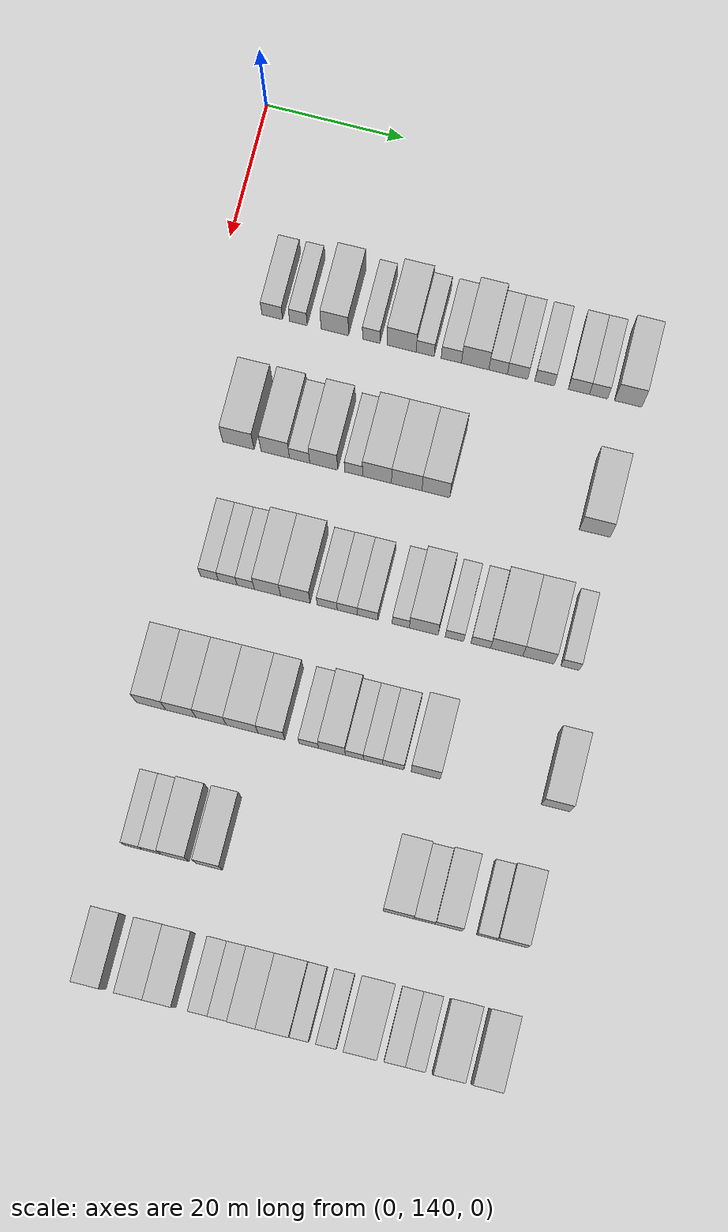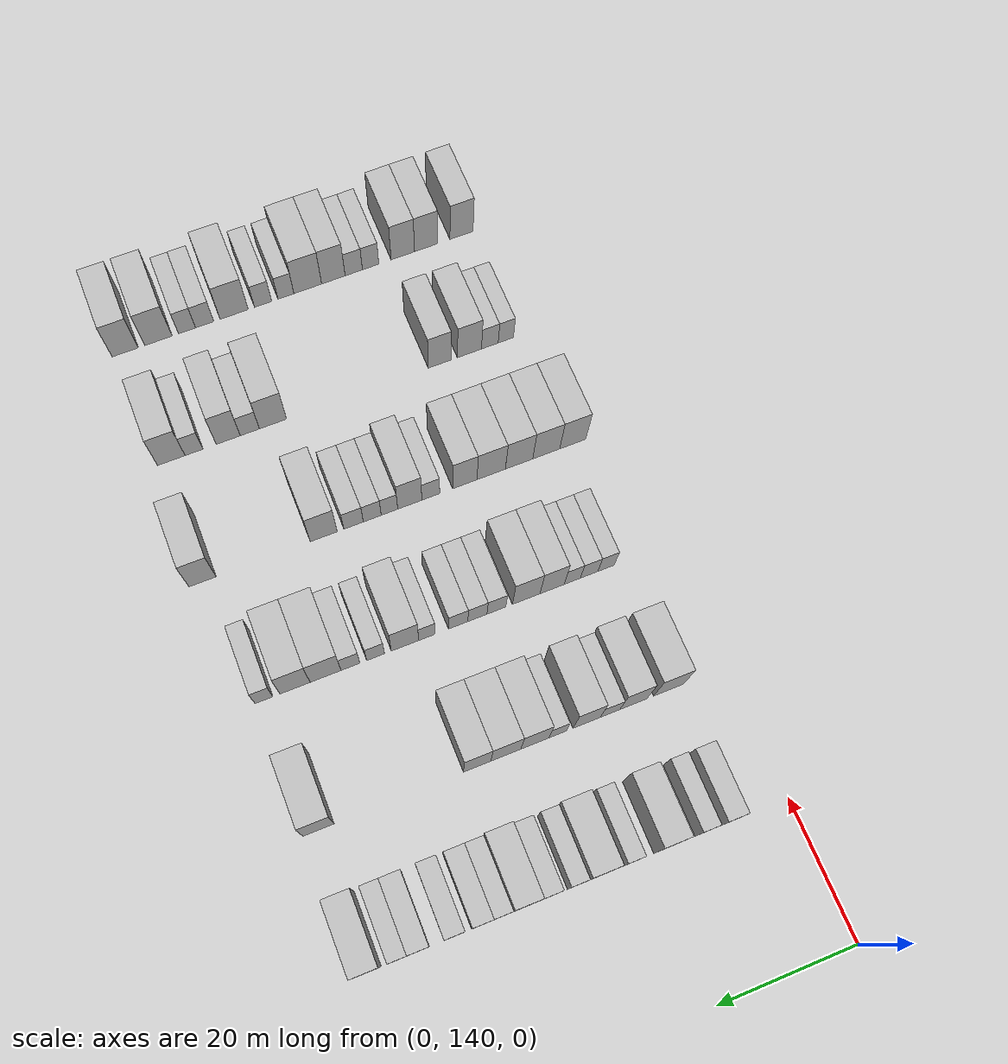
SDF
<sdf version="1.6">
 <world name="default">
  <model name="building_118">
   <static>1</static>
   <pose>25.0000 148.6837 0 0.000000 0.000000 0.000000</pose>
   <link name="link">
    <pose>0 0 3.00 0 0 0</pose>
    <collision name="collision"><geometry><box><size>10.0000 2.9763 6.0000</size></box></geometry></collision>
    <visual name="visual">
     <cast_shadows>0</cast_shadows>
     <geometry><box><size>10.0000 2.9763 6.0000</size></box></geometry>
     <material>
      <script>
       <uri>model://HANNAS_wall/materials/scripts</uri>
       <uri>model://HANNAS_wall/materials/textures</uri>
       <name>vrc/HANNAS_wall</name>
      </script>
     </material>
    </visual>
   </link>
  </model>
  <model name="building_119">
   <static>1</static>
   <pose>25.0000 152.4466 0 0.000000 0.000000 0.000000</pose>
   <link name="link">
    <pose>0 0 3.00 0 0 0</pose>
    <collision name="collision"><geometry><box><size>10.0000 2.5495 6.0000</size></box></geometry></collision>
    <visual name="visual">
     <cast_shadows>0</cast_shadows>
     <geometry><box><size>10.0000 2.5495 6.0000</size></box></geometry>
     <material>
      <script>
       <uri>model://HANNAS_wall/materials/scripts</uri>
       <uri>model://HANNAS_wall/materials/textures</uri>
       <name>vrc/HANNAS_wall</name>
      </script>
     </material>
    </visual>
   </link>
  </model>
  <model name="building_120">
   <static>1</static>
   <pose>25.0000 157.6999 0 0.000000 0.000000 0.000000</pose>
   <link name="link">
    <pose>0 0 4.50 0 0 0</pose>
    <collision name="collision"><geometry><box><size>10.0000 3.9571 9.0000</size></box></geometry></collision>
    <visual name="visual">
     <cast_shadows>0</cast_shadows>
     <geometry><box><size>10.0000 3.9571 9.0000</size></box></geometry>
     <material>
      <script>
       <uri>model://HANNAS_wall/materials/scripts</uri>
       <uri>model://HANNAS_wall/materials/textures</uri>
       <name>vrc/HANNAS_wall</name>
      </script>
     </material>
    </visual>
   </link>
  </model>
  <model name="building_121">
   <static>1</static>
   <pose>25.0000 162.9320 0 0.000000 0.000000 0.000000</pose>
   <link name="link">
    <pose>0 0 3.00 0 0 0</pose>
    <collision name="collision"><geometry><box><size>10.0000 2.5071 6.0000</size></box></geometry></collision>
    <visual name="visual">
     <cast_shadows>0</cast_shadows>
     <geometry><box><size>10.0000 2.5071 6.0000</size></box></geometry>
     <material>
      <script>
       <uri>model://HANNAS_wall/materials/scripts</uri>
       <uri>model://HANNAS_wall/materials/textures</uri>
       <name>vrc/HANNAS_wall</name>
      </script>
     </material>
    </visual>
   </link>
  </model>
  <model name="building_122">
   <static>1</static>
   <pose>25.0000 167.2931 0 0.000000 0.000000 0.000000</pose>
   <link name="link">
    <pose>0 0 4.50 0 0 0</pose>
    <collision name="collision"><geometry><box><size>10.0000 4.2152 9.0000</size></box></geometry></collision>
    <visual name="visual">
     <cast_shadows>0</cast_shadows>
     <geometry><box><size>10.0000 4.2152 9.0000</size></box></geometry>
     <material>
      <script>
       <uri>model://HANNAS_wall/materials/scripts</uri>
       <uri>model://HANNAS_wall/materials/textures</uri>
       <name>vrc/HANNAS_wall</name>
      </script>
     </material>
    </visual>
   </link>
  </model>
  <model name="building_123">
   <static>1</static>
   <pose>25.0000 170.6871 0 0.000000 0.000000 0.000000</pose>
   <link name="link">
    <pose>0 0 3.00 0 0 0</pose>
    <collision name="collision"><geometry><box><size>10.0000 2.5729 6.0000</size></box></geometry></collision>
    <visual name="visual">
     <cast_shadows>0</cast_shadows>
     <geometry><box><size>10.0000 2.5729 6.0000</size></box></geometry>
     <material>
      <script>
       <uri>model://HANNAS_wall/materials/scripts</uri>
       <uri>model://HANNAS_wall/materials/textures</uri>
       <name>vrc/HANNAS_wall</name>
      </script>
     </material>
    </visual>
   </link>
  </model>
  <model name="building_124">
   <static>1</static>
   <pose>25.0000 174.4307 0 0.000000 0.000000 0.000000</pose>
   <link name="link">
    <pose>0 0 3.00 0 0 0</pose>
    <collision name="collision"><geometry><box><size>10.0000 2.9143 6.0000</size></box></geometry></collision>
    <visual name="visual">
     <cast_shadows>0</cast_shadows>
     <geometry><box><size>10.0000 2.9143 6.0000</size></box></geometry>
     <material>
      <script>
       <uri>model://HANNAS_wall/materials/scripts</uri>
       <uri>model://HANNAS_wall/materials/textures</uri>
       <name>vrc/HANNAS_wall</name>
      </script>
     </material>
    </visual>
   </link>
  </model>
  <model name="building_125">
   <static>1</static>
   <pose>25.0000 177.8520 0 0.000000 0.000000 0.000000</pose>
   <link name="link">
    <pose>0 0 4.50 0 0 0</pose>
    <collision name="collision"><geometry><box><size>10.0000 3.9283 9.0000</size></box></geometry></collision>
    <visual name="visual">
     <cast_shadows>0</cast_shadows>
     <geometry><box><size>10.0000 3.9283 9.0000</size></box></geometry>
     <material>
      <script>
       <uri>model://HANNAS_wall/materials/scripts</uri>
       <uri>model://HANNAS_wall/materials/textures</uri>
       <name>vrc/HANNAS_wall</name>
      </script>
     </material>
    </visual>
   </link>
  </model>
  <model name="building_126">
   <static>1</static>
   <pose>25.0000 181.1390 0 0.000000 0.000000 0.000000</pose>
   <link name="link">
    <pose>0 0 3.00 0 0 0</pose>
    <collision name="collision"><geometry><box><size>10.0000 2.6457 6.0000</size></box></geometry></collision>
    <visual name="visual">
     <cast_shadows>0</cast_shadows>
     <geometry><box><size>10.0000 2.6457 6.0000</size></box></geometry>
     <material>
      <script>
       <uri>model://HANNAS_wall/materials/scripts</uri>
       <uri>model://HANNAS_wall/materials/textures</uri>
       <name>vrc/HANNAS_wall</name>
      </script>
     </material>
    </visual>
   </link>
  </model>
  <model name="building_127">
   <static>1</static>
   <pose>25.0000 183.9231 0 0.000000 0.000000 0.000000</pose>
   <link name="link">
    <pose>0 0 3.00 0 0 0</pose>
    <collision name="collision"><geometry><box><size>10.0000 2.9226 6.0000</size></box></geometry></collision>
    <visual name="visual">
     <cast_shadows>0</cast_shadows>
     <geometry><box><size>10.0000 2.9226 6.0000</size></box></geometry>
     <material>
      <script>
       <uri>model://HANNAS_wall/materials/scripts</uri>
       <uri>model://HANNAS_wall/materials/textures</uri>
       <name>vrc/HANNAS_wall</name>
      </script>
     </material>
    </visual>
   </link>
  </model>
  <model name="building_128">
   <static>1</static>
   <pose>25.0000 187.7919 0 0.000000 0.000000 0.000000</pose>
   <link name="link">
    <pose>0 0 3.00 0 0 0</pose>
    <collision name="collision"><geometry><box><size>10.0000 2.8150 6.0000</size></box></geometry></collision>
    <visual name="visual">
     <cast_shadows>0</cast_shadows>
     <geometry><box><size>10.0000 2.8150 6.0000</size></box></geometry>
     <material>
      <script>
       <uri>model://HANNAS_wall/materials/scripts</uri>
       <uri>model://HANNAS_wall/materials/textures</uri>
       <name>vrc/HANNAS_wall</name>
      </script>
     </material>
    </visual>
   </link>
  </model>
  <model name="building_129">
   <static>1</static>
   <pose>25.0000 192.6936 0 0.000000 0.000000 0.000000</pose>
   <link name="link">
    <pose>0 0 3.00 0 0 0</pose>
    <collision name="collision"><geometry><box><size>10.0000 2.9883 6.0000</size></box></geometry></collision>
    <visual name="visual">
     <cast_shadows>0</cast_shadows>
     <geometry><box><size>10.0000 2.9883 6.0000</size></box></geometry>
     <material>
      <script>
       <uri>model://HANNAS_wall/materials/scripts</uri>
       <uri>model://HANNAS_wall/materials/textures</uri>
       <name>vrc/HANNAS_wall</name>
      </script>
     </material>
    </visual>
   </link>
  </model>
  <model name="building_130">
   <static>1</static>
   <pose>25.0000 195.4893 0 0.000000 0.000000 0.000000</pose>
   <link name="link">
    <pose>0 0 3.00 0 0 0</pose>
    <collision name="collision"><geometry><box><size>10.0000 2.6030 6.0000</size></box></geometry></collision>
    <visual name="visual">
     <cast_shadows>0</cast_shadows>
     <geometry><box><size>10.0000 2.6030 6.0000</size></box></geometry>
     <material>
      <script>
       <uri>model://HANNAS_wall/materials/scripts</uri>
       <uri>model://HANNAS_wall/materials/textures</uri>
       <name>vrc/HANNAS_wall</name>
      </script>
     </material>
    </visual>
   </link>
  </model>
  <model name="building_131">
   <static>1</static>
   <pose>25.0000 199.7324 0 0.000000 0.000000 0.000000</pose>
   <link name="link">
    <pose>0 0 4.50 0 0 0</pose>
    <collision name="collision"><geometry><box><size>10.0000 3.8834 9.0000</size></box></geometry></collision>
    <visual name="visual">
     <cast_shadows>0</cast_shadows>
     <geometry><box><size>10.0000 3.8834 9.0000</size></box></geometry>
     <material>
      <script>
       <uri>model://HANNAS_wall/materials/scripts</uri>
       <uri>model://HANNAS_wall/materials/textures</uri>
       <name>vrc/HANNAS_wall</name>
      </script>
     </material>
    </visual>
   </link>
  </model>
  <model name="building_285">
   <static>1</static>
   <pose>44.0000 148.7897 0 0.000000 0.000000 0.000000</pose>
   <link name="link">
    <pose>0 0 4.50 0 0 0</pose>
    <collision name="collision"><geometry><box><size>10.0000 4.4940 9.0000</size></box></geometry></collision>
    <visual name="visual">
     <cast_shadows>0</cast_shadows>
     <geometry><box><size>10.0000 4.4940 9.0000</size></box></geometry>
     <material>
      <script>
       <uri>model://HANNAS_wall/materials/scripts</uri>
       <uri>model://HANNAS_wall/materials/textures</uri>
       <name>vrc/HANNAS_wall</name>
      </script>
     </material>
    </visual>
   </link>
  </model>
  <model name="building_286">
   <static>1</static>
   <pose>44.0000 154.0646 0 0.000000 0.000000 0.000000</pose>
   <link name="link">
    <pose>0 0 4.50 0 0 0</pose>
    <collision name="collision"><geometry><box><size>10.0000 4.0558 9.0000</size></box></geometry></collision>
    <visual name="visual">
     <cast_shadows>0</cast_shadows>
     <geometry><box><size>10.0000 4.0558 9.0000</size></box></geometry>
     <material>
      <script>
       <uri>model://HANNAS_wall/materials/scripts</uri>
       <uri>model://HANNAS_wall/materials/textures</uri>
       <name>vrc/HANNAS_wall</name>
      </script>
     </material>
    </visual>
   </link>
  </model>
  <model name="building_287">
   <static>1</static>
   <pose>44.0000 157.5310 0 0.000000 0.000000 0.000000</pose>
   <link name="link">
    <pose>0 0 3.00 0 0 0</pose>
    <collision name="collision"><geometry><box><size>10.0000 2.8770 6.0000</size></box></geometry></collision>
    <visual name="visual">
     <cast_shadows>0</cast_shadows>
     <geometry><box><size>10.0000 2.8770 6.0000</size></box></geometry>
     <material>
      <script>
       <uri>model://HANNAS_wall/materials/scripts</uri>
       <uri>model://HANNAS_wall/materials/textures</uri>
       <name>vrc/HANNAS_wall</name>
      </script>
     </material>
    </visual>
   </link>
  </model>
  <model name="building_288">
   <static>1</static>
   <pose>44.0000 160.9638 0 0.000000 0.000000 0.000000</pose>
   <link name="link">
    <pose>0 0 4.50 0 0 0</pose>
    <collision name="collision"><geometry><box><size>10.0000 3.9887 9.0000</size></box></geometry></collision>
    <visual name="visual">
     <cast_shadows>0</cast_shadows>
     <geometry><box><size>10.0000 3.9887 9.0000</size></box></geometry>
     <material>
      <script>
       <uri>model://HANNAS_wall/materials/scripts</uri>
       <uri>model://HANNAS_wall/materials/textures</uri>
       <name>vrc/HANNAS_wall</name>
      </script>
     </material>
    </visual>
   </link>
  </model>
  <model name="building_289">
   <static>1</static>
   <pose>44.0000 165.2332 0 0.000000 0.000000 0.000000</pose>
   <link name="link">
    <pose>0 0 3.00 0 0 0</pose>
    <collision name="collision"><geometry><box><size>10.0000 2.5502 6.0000</size></box></geometry></collision>
    <visual name="visual">
     <cast_shadows>0</cast_shadows>
     <geometry><box><size>10.0000 2.5502 6.0000</size></box></geometry>
     <material>
      <script>
       <uri>model://HANNAS_wall/materials/scripts</uri>
       <uri>model://HANNAS_wall/materials/textures</uri>
       <name>vrc/HANNAS_wall</name>
      </script>
     </material>
    </visual>
   </link>
  </model>
  <model name="building_290">
   <static>1</static>
   <pose>44.0000 168.5596 0 0.000000 0.000000 0.000000</pose>
   <link name="link">
    <pose>0 0 4.50 0 0 0</pose>
    <collision name="collision"><geometry><box><size>10.0000 4.1026 9.0000</size></box></geometry></collision>
    <visual name="visual">
     <cast_shadows>0</cast_shadows>
     <geometry><box><size>10.0000 4.1026 9.0000</size></box></geometry>
     <material>
      <script>
       <uri>model://HANNAS_wall/materials/scripts</uri>
       <uri>model://HANNAS_wall/materials/textures</uri>
       <name>vrc/HANNAS_wall</name>
      </script>
     </material>
    </visual>
   </link>
  </model>
  <model name="building_291">
   <static>1</static>
   <pose>44.0000 172.7802 0 0.000000 0.000000 0.000000</pose>
   <link name="link">
    <pose>0 0 4.50 0 0 0</pose>
    <collision name="collision"><geometry><box><size>10.0000 4.3386 9.0000</size></box></geometry></collision>
    <visual name="visual">
     <cast_shadows>0</cast_shadows>
     <geometry><box><size>10.0000 4.3386 9.0000</size></box></geometry>
     <material>
      <script>
       <uri>model://HANNAS_wall/materials/scripts</uri>
       <uri>model://HANNAS_wall/materials/textures</uri>
       <name>vrc/HANNAS_wall</name>
      </script>
     </material>
    </visual>
   </link>
  </model>
  <model name="building_292">
   <static>1</static>
   <pose>44.0000 176.9233 0 0.000000 0.000000 0.000000</pose>
   <link name="link">
    <pose>0 0 4.50 0 0 0</pose>
    <collision name="collision"><geometry><box><size>10.0000 3.9475 9.0000</size></box></geometry></collision>
    <visual name="visual">
     <cast_shadows>0</cast_shadows>
     <geometry><box><size>10.0000 3.9475 9.0000</size></box></geometry>
     <material>
      <script>
       <uri>model://HANNAS_wall/materials/scripts</uri>
       <uri>model://HANNAS_wall/materials/textures</uri>
       <name>vrc/HANNAS_wall</name>
      </script>
     </material>
    </visual>
   </link>
  </model>
  <model name="building_293">
   <static>1</static>
   <pose>44.0000 199.4144 0 0.000000 0.000000 0.000000</pose>
   <link name="link">
    <pose>0 0 4.50 0 0 0</pose>
    <collision name="collision"><geometry><box><size>10.0000 4.3449 9.0000</size></box></geometry></collision>
    <visual name="visual">
     <cast_shadows>0</cast_shadows>
     <geometry><box><size>10.0000 4.3449 9.0000</size></box></geometry>
     <material>
      <script>
       <uri>model://HANNAS_wall/materials/scripts</uri>
       <uri>model://HANNAS_wall/materials/textures</uri>
       <name>vrc/HANNAS_wall</name>
      </script>
     </material>
    </visual>
   </link>
  </model>
  <model name="building_454">
   <static>1</static>
   <pose>63.0000 149.7007 0 0.000000 0.000000 0.000000</pose>
   <link name="link">
    <pose>0 0 3.00 0 0 0</pose>
    <collision name="collision"><geometry><box><size>10.0000 2.5150 6.0000</size></box></geometry></collision>
    <visual name="visual">
     <cast_shadows>0</cast_shadows>
     <geometry><box><size>10.0000 2.5150 6.0000</size></box></geometry>
     <material>
      <script>
       <uri>model://HANNAS_wall/materials/scripts</uri>
       <uri>model://HANNAS_wall/materials/textures</uri>
       <name>vrc/HANNAS_wall</name>
      </script>
     </material>
    </visual>
   </link>
  </model>
  <model name="building_455">
   <static>1</static>
   <pose>63.0000 152.2894 0 0.000000 0.000000 0.000000</pose>
   <link name="link">
    <pose>0 0 3.00 0 0 0</pose>
    <collision name="collision"><geometry><box><size>10.0000 2.6624 6.0000</size></box></geometry></collision>
    <visual name="visual">
     <cast_shadows>0</cast_shadows>
     <geometry><box><size>10.0000 2.6624 6.0000</size></box></geometry>
     <material>
      <script>
       <uri>model://HANNAS_wall/materials/scripts</uri>
       <uri>model://HANNAS_wall/materials/textures</uri>
       <name>vrc/HANNAS_wall</name>
      </script>
     </material>
    </visual>
   </link>
  </model>
  <model name="building_456">
   <static>1</static>
   <pose>63.0000 154.8460 0 0.000000 0.000000 0.000000</pose>
   <link name="link">
    <pose>0 0 3.00 0 0 0</pose>
    <collision name="collision"><geometry><box><size>10.0000 2.4509 6.0000</size></box></geometry></collision>
    <visual name="visual">
     <cast_shadows>0</cast_shadows>
     <geometry><box><size>10.0000 2.4509 6.0000</size></box></geometry>
     <material>
      <script>
       <uri>model://HANNAS_wall/materials/scripts</uri>
       <uri>model://HANNAS_wall/materials/textures</uri>
       <name>vrc/HANNAS_wall</name>
      </script>
     </material>
    </visual>
   </link>
  </model>
  <model name="building_457">
   <static>1</static>
   <pose>63.0000 157.9164 0 0.000000 0.000000 0.000000</pose>
   <link name="link">
    <pose>0 0 4.50 0 0 0</pose>
    <collision name="collision"><geometry><box><size>10.0000 3.6899 9.0000</size></box></geometry></collision>
    <visual name="visual">
     <cast_shadows>0</cast_shadows>
     <geometry><box><size>10.0000 3.6899 9.0000</size></box></geometry>
     <material>
      <script>
       <uri>model://HANNAS_wall/materials/scripts</uri>
       <uri>model://HANNAS_wall/materials/textures</uri>
       <name>vrc/HANNAS_wall</name>
      </script>
     </material>
    </visual>
   </link>
  </model>
  <model name="building_458">
   <static>1</static>
   <pose>63.0000 161.8444 0 0.000000 0.000000 0.000000</pose>
   <link name="link">
    <pose>0 0 4.50 0 0 0</pose>
    <collision name="collision"><geometry><box><size>10.0000 4.1660 9.0000</size></box></geometry></collision>
    <visual name="visual">
     <cast_shadows>0</cast_shadows>
     <geometry><box><size>10.0000 4.1660 9.0000</size></box></geometry>
     <material>
      <script>
       <uri>model://HANNAS_wall/materials/scripts</uri>
       <uri>model://HANNAS_wall/materials/textures</uri>
       <name>vrc/HANNAS_wall</name>
      </script>
     </material>
    </visual>
   </link>
  </model>
  <model name="building_459">
   <static>1</static>
   <pose>63.0000 166.3409 0 0.000000 0.000000 0.000000</pose>
   <link name="link">
    <pose>0 0 3.00 0 0 0</pose>
    <collision name="collision"><geometry><box><size>10.0000 2.8271 6.0000</size></box></geometry></collision>
    <visual name="visual">
     <cast_shadows>0</cast_shadows>
     <geometry><box><size>10.0000 2.8271 6.0000</size></box></geometry>
     <material>
      <script>
       <uri>model://HANNAS_wall/materials/scripts</uri>
       <uri>model://HANNAS_wall/materials/textures</uri>
       <name>vrc/HANNAS_wall</name>
      </script>
     </material>
    </visual>
   </link>
  </model>
  <model name="building_460">
   <static>1</static>
   <pose>63.0000 169.1855 0 0.000000 0.000000 0.000000</pose>
   <link name="link">
    <pose>0 0 3.00 0 0 0</pose>
    <collision name="collision"><geometry><box><size>10.0000 2.8621 6.0000</size></box></geometry></collision>
    <visual name="visual">
     <cast_shadows>0</cast_shadows>
     <geometry><box><size>10.0000 2.8621 6.0000</size></box></geometry>
     <material>
      <script>
       <uri>model://HANNAS_wall/materials/scripts</uri>
       <uri>model://HANNAS_wall/materials/textures</uri>
       <name>vrc/HANNAS_wall</name>
      </script>
     </material>
    </visual>
   </link>
  </model>
  <model name="building_461">
   <static>1</static>
   <pose>63.0000 172.0537 0 0.000000 0.000000 0.000000</pose>
   <link name="link">
    <pose>0 0 3.00 0 0 0</pose>
    <collision name="collision"><geometry><box><size>10.0000 2.8744 6.0000</size></box></geometry></collision>
    <visual name="visual">
     <cast_shadows>0</cast_shadows>
     <geometry><box><size>10.0000 2.8744 6.0000</size></box></geometry>
     <material>
      <script>
       <uri>model://HANNAS_wall/materials/scripts</uri>
       <uri>model://HANNAS_wall/materials/textures</uri>
       <name>vrc/HANNAS_wall</name>
      </script>
     </material>
    </visual>
   </link>
  </model>
  <model name="building_462">
   <static>1</static>
   <pose>63.0000 176.7048 0 0.000000 0.000000 0.000000</pose>
   <link name="link">
    <pose>0 0 3.00 0 0 0</pose>
    <collision name="collision"><geometry><box><size>10.0000 2.4278 6.0000</size></box></geometry></collision>
    <visual name="visual">
     <cast_shadows>0</cast_shadows>
     <geometry><box><size>10.0000 2.4278 6.0000</size></box></geometry>
     <material>
      <script>
       <uri>model://HANNAS_wall/materials/scripts</uri>
       <uri>model://HANNAS_wall/materials/textures</uri>
       <name>vrc/HANNAS_wall</name>
      </script>
     </material>
    </visual>
   </link>
  </model>
  <model name="building_463">
   <static>1</static>
   <pose>63.0000 179.9324 0 0.000000 0.000000 0.000000</pose>
   <link name="link">
    <pose>0 0 4.50 0 0 0</pose>
    <collision name="collision"><geometry><box><size>10.0000 4.0275 9.0000</size></box></geometry></collision>
    <visual name="visual">
     <cast_shadows>0</cast_shadows>
     <geometry><box><size>10.0000 4.0275 9.0000</size></box></geometry>
     <material>
      <script>
       <uri>model://HANNAS_wall/materials/scripts</uri>
       <uri>model://HANNAS_wall/materials/textures</uri>
       <name>vrc/HANNAS_wall</name>
      </script>
     </material>
    </visual>
   </link>
  </model>
  <model name="building_464">
   <static>1</static>
   <pose>63.0000 184.2479 0 0.000000 0.000000 0.000000</pose>
   <link name="link">
    <pose>0 0 3.00 0 0 0</pose>
    <collision name="collision"><geometry><box><size>10.0000 2.6034 6.0000</size></box></geometry></collision>
    <visual name="visual">
     <cast_shadows>0</cast_shadows>
     <geometry><box><size>10.0000 2.6034 6.0000</size></box></geometry>
     <material>
      <script>
       <uri>model://HANNAS_wall/materials/scripts</uri>
       <uri>model://HANNAS_wall/materials/textures</uri>
       <name>vrc/HANNAS_wall</name>
      </script>
     </material>
    </visual>
   </link>
  </model>
  <model name="building_465">
   <static>1</static>
   <pose>63.0000 187.9281 0 0.000000 0.000000 0.000000</pose>
   <link name="link">
    <pose>0 0 3.00 0 0 0</pose>
    <collision name="collision"><geometry><box><size>10.0000 2.7570 6.0000</size></box></geometry></collision>
    <visual name="visual">
     <cast_shadows>0</cast_shadows>
     <geometry><box><size>10.0000 2.7570 6.0000</size></box></geometry>
     <material>
      <script>
       <uri>model://HANNAS_wall/materials/scripts</uri>
       <uri>model://HANNAS_wall/materials/textures</uri>
       <name>vrc/HANNAS_wall</name>
      </script>
     </material>
    </visual>
   </link>
  </model>
  <model name="building_466">
   <static>1</static>
   <pose>63.0000 191.5550 0 0.000000 0.000000 0.000000</pose>
   <link name="link">
    <pose>0 0 4.50 0 0 0</pose>
    <collision name="collision"><geometry><box><size>10.0000 4.4968 9.0000</size></box></geometry></collision>
    <visual name="visual">
     <cast_shadows>0</cast_shadows>
     <geometry><box><size>10.0000 4.4968 9.0000</size></box></geometry>
     <material>
      <script>
       <uri>model://HANNAS_wall/materials/scripts</uri>
       <uri>model://HANNAS_wall/materials/textures</uri>
       <name>vrc/HANNAS_wall</name>
      </script>
     </material>
    </visual>
   </link>
  </model>
  <model name="building_467">
   <static>1</static>
   <pose>63.0000 195.9827 0 0.000000 0.000000 0.000000</pose>
   <link name="link">
    <pose>0 0 4.50 0 0 0</pose>
    <collision name="collision"><geometry><box><size>10.0000 4.3587 9.0000</size></box></geometry></collision>
    <visual name="visual">
     <cast_shadows>0</cast_shadows>
     <geometry><box><size>10.0000 4.3587 9.0000</size></box></geometry>
     <material>
      <script>
       <uri>model://HANNAS_wall/materials/scripts</uri>
       <uri>model://HANNAS_wall/materials/textures</uri>
       <name>vrc/HANNAS_wall</name>
      </script>
     </material>
    </visual>
   </link>
  </model>
  <model name="building_468">
   <static>1</static>
   <pose>63.0000 200.4482 0 0.000000 0.000000 0.000000</pose>
   <link name="link">
    <pose>0 0 3.00 0 0 0</pose>
    <collision name="collision"><geometry><box><size>10.0000 2.5724 6.0000</size></box></geometry></collision>
    <visual name="visual">
     <cast_shadows>0</cast_shadows>
     <geometry><box><size>10.0000 2.5724 6.0000</size></box></geometry>
     <material>
      <script>
       <uri>model://HANNAS_wall/materials/scripts</uri>
       <uri>model://HANNAS_wall/materials/textures</uri>
       <name>vrc/HANNAS_wall</name>
      </script>
     </material>
    </visual>
   </link>
  </model>
  <model name="building_631">
   <static>1</static>
   <pose>82.0000 146.5657 0 0.000000 0.000000 0.000000</pose>
   <link name="link">
    <pose>0 0 4.50 0 0 0</pose>
    <collision name="collision"><geometry><box><size>10.0000 4.1153 9.0000</size></box></geometry></collision>
    <visual name="visual">
     <cast_shadows>0</cast_shadows>
     <geometry><box><size>10.0000 4.1153 9.0000</size></box></geometry>
     <material>
      <script>
       <uri>model://HANNAS_wall/materials/scripts</uri>
       <uri>model://HANNAS_wall/materials/textures</uri>
       <name>vrc/HANNAS_wall</name>
      </script>
     </material>
    </visual>
   </link>
  </model>
  <model name="building_632">
   <static>1</static>
   <pose>82.0000 150.7418 0 0.000000 0.000000 0.000000</pose>
   <link name="link">
    <pose>0 0 4.50 0 0 0</pose>
    <collision name="collision"><geometry><box><size>10.0000 4.2369 9.0000</size></box></geometry></collision>
    <visual name="visual">
     <cast_shadows>0</cast_shadows>
     <geometry><box><size>10.0000 4.2369 9.0000</size></box></geometry>
     <material>
      <script>
       <uri>model://HANNAS_wall/materials/scripts</uri>
       <uri>model://HANNAS_wall/materials/textures</uri>
       <name>vrc/HANNAS_wall</name>
      </script>
     </material>
    </visual>
   </link>
  </model>
  <model name="building_633">
   <static>1</static>
   <pose>82.0000 154.9970 0 0.000000 0.000000 0.000000</pose>
   <link name="link">
    <pose>0 0 4.50 0 0 0</pose>
    <collision name="collision"><geometry><box><size>10.0000 4.2736 9.0000</size></box></geometry></collision>
    <visual name="visual">
     <cast_shadows>0</cast_shadows>
     <geometry><box><size>10.0000 4.2736 9.0000</size></box></geometry>
     <material>
      <script>
       <uri>model://HANNAS_wall/materials/scripts</uri>
       <uri>model://HANNAS_wall/materials/textures</uri>
       <name>vrc/HANNAS_wall</name>
      </script>
     </material>
    </visual>
   </link>
  </model>
  <model name="building_634">
   <static>1</static>
   <pose>82.0000 159.3432 0 0.000000 0.000000 0.000000</pose>
   <link name="link">
    <pose>0 0 4.50 0 0 0</pose>
    <collision name="collision"><geometry><box><size>10.0000 4.4187 9.0000</size></box></geometry></collision>
    <visual name="visual">
     <cast_shadows>0</cast_shadows>
     <geometry><box><size>10.0000 4.4187 9.0000</size></box></geometry>
     <material>
      <script>
       <uri>model://HANNAS_wall/materials/scripts</uri>
       <uri>model://HANNAS_wall/materials/textures</uri>
       <name>vrc/HANNAS_wall</name>
      </script>
     </material>
    </visual>
   </link>
  </model>
  <model name="building_635">
   <static>1</static>
   <pose>82.0000 163.4279 0 0.000000 0.000000 0.000000</pose>
   <link name="link">
    <pose>0 0 4.50 0 0 0</pose>
    <collision name="collision"><geometry><box><size>10.0000 3.7507 9.0000</size></box></geometry></collision>
    <visual name="visual">
     <cast_shadows>0</cast_shadows>
     <geometry><box><size>10.0000 3.7507 9.0000</size></box></geometry>
     <material>
      <script>
       <uri>model://HANNAS_wall/materials/scripts</uri>
       <uri>model://HANNAS_wall/materials/textures</uri>
       <name>vrc/HANNAS_wall</name>
      </script>
     </material>
    </visual>
   </link>
  </model>
  <model name="building_636">
   <static>1</static>
   <pose>82.0000 168.6719 0 0.000000 0.000000 0.000000</pose>
   <link name="link">
    <pose>0 0 3.00 0 0 0</pose>
    <collision name="collision"><geometry><box><size>10.0000 2.7374 6.0000</size></box></geometry></collision>
    <visual name="visual">
     <cast_shadows>0</cast_shadows>
     <geometry><box><size>10.0000 2.7374 6.0000</size></box></geometry>
     <material>
      <script>
       <uri>model://HANNAS_wall/materials/scripts</uri>
       <uri>model://HANNAS_wall/materials/textures</uri>
       <name>vrc/HANNAS_wall</name>
      </script>
     </material>
    </visual>
   </link>
  </model>
  <model name="building_637">
   <static>1</static>
   <pose>82.0000 171.8863 0 0.000000 0.000000 0.000000</pose>
   <link name="link">
    <pose>0 0 4.50 0 0 0</pose>
    <collision name="collision"><geometry><box><size>10.0000 3.6915 9.0000</size></box></geometry></collision>
    <visual name="visual">
     <cast_shadows>0</cast_shadows>
     <geometry><box><size>10.0000 3.6915 9.0000</size></box></geometry>
     <material>
      <script>
       <uri>model://HANNAS_wall/materials/scripts</uri>
       <uri>model://HANNAS_wall/materials/textures</uri>
       <name>vrc/HANNAS_wall</name>
      </script>
     </material>
    </visual>
   </link>
  </model>
  <model name="building_638">
   <static>1</static>
   <pose>82.0000 174.9860 0 0.000000 0.000000 0.000000</pose>
   <link name="link">
    <pose>0 0 3.00 0 0 0</pose>
    <collision name="collision"><geometry><box><size>10.0000 2.5079 6.0000</size></box></geometry></collision>
    <visual name="visual">
     <cast_shadows>0</cast_shadows>
     <geometry><box><size>10.0000 2.5079 6.0000</size></box></geometry>
     <material>
      <script>
       <uri>model://HANNAS_wall/materials/scripts</uri>
       <uri>model://HANNAS_wall/materials/textures</uri>
       <name>vrc/HANNAS_wall</name>
      </script>
     </material>
    </visual>
   </link>
  </model>
  <model name="building_639">
   <static>1</static>
   <pose>82.0000 177.5936 0 0.000000 0.000000 0.000000</pose>
   <link name="link">
    <pose>0 0 3.00 0 0 0</pose>
    <collision name="collision"><geometry><box><size>10.0000 2.7073 6.0000</size></box></geometry></collision>
    <visual name="visual">
     <cast_shadows>0</cast_shadows>
     <geometry><box><size>10.0000 2.7073 6.0000</size></box></geometry>
     <material>
      <script>
       <uri>model://HANNAS_wall/materials/scripts</uri>
       <uri>model://HANNAS_wall/materials/textures</uri>
       <name>vrc/HANNAS_wall</name>
      </script>
     </material>
    </visual>
   </link>
  </model>
  <model name="building_640">
   <static>1</static>
   <pose>82.0000 180.4216 0 0.000000 0.000000 0.000000</pose>
   <link name="link">
    <pose>0 0 3.00 0 0 0</pose>
    <collision name="collision"><geometry><box><size>10.0000 2.9487 6.0000</size></box></geometry></collision>
    <visual name="visual">
     <cast_shadows>0</cast_shadows>
     <geometry><box><size>10.0000 2.9487 6.0000</size></box></geometry>
     <material>
      <script>
       <uri>model://HANNAS_wall/materials/scripts</uri>
       <uri>model://HANNAS_wall/materials/textures</uri>
       <name>vrc/HANNAS_wall</name>
      </script>
     </material>
    </visual>
   </link>
  </model>
  <model name="building_641">
   <static>1</static>
   <pose>82.0000 184.9296 0 0.000000 0.000000 0.000000</pose>
   <link name="link">
    <pose>0 0 4.50 0 0 0</pose>
    <collision name="collision"><geometry><box><size>10.0000 4.0673 9.0000</size></box></geometry></collision>
    <visual name="visual">
     <cast_shadows>0</cast_shadows>
     <geometry><box><size>10.0000 4.0673 9.0000</size></box></geometry>
     <material>
      <script>
       <uri>model://HANNAS_wall/materials/scripts</uri>
       <uri>model://HANNAS_wall/materials/textures</uri>
       <name>vrc/HANNAS_wall</name>
      </script>
     </material>
    </visual>
   </link>
  </model>
  <model name="building_642">
   <static>1</static>
   <pose>82.0000 202.9575 0 0.000000 0.000000 0.000000</pose>
   <link name="link">
    <pose>0 0 4.50 0 0 0</pose>
    <collision name="collision"><geometry><box><size>10.0000 3.9962 9.0000</size></box></geometry></collision>
    <visual name="visual">
     <cast_shadows>0</cast_shadows>
     <geometry><box><size>10.0000 3.9962 9.0000</size></box></geometry>
     <material>
      <script>
       <uri>model://HANNAS_wall/materials/scripts</uri>
       <uri>model://HANNAS_wall/materials/textures</uri>
       <name>vrc/HANNAS_wall</name>
      </script>
     </material>
    </visual>
   </link>
  </model>
  <model name="building_804">
   <static>1</static>
   <pose>101.0000 149.2034 0 0.000000 0.000000 0.000000</pose>
   <link name="link">
    <pose>0 0 3.00 0 0 0</pose>
    <collision name="collision"><geometry><box><size>10.0000 2.4515 6.0000</size></box></geometry></collision>
    <visual name="visual">
     <cast_shadows>0</cast_shadows>
     <geometry><box><size>10.0000 2.4515 6.0000</size></box></geometry>
     <material>
      <script>
       <uri>model://HANNAS_wall/materials/scripts</uri>
       <uri>model://HANNAS_wall/materials/textures</uri>
       <name>vrc/HANNAS_wall</name>
      </script>
     </material>
    </visual>
   </link>
  </model>
  <model name="building_805">
   <static>1</static>
   <pose>101.0000 151.7779 0 0.000000 0.000000 0.000000</pose>
   <link name="link">
    <pose>0 0 3.00 0 0 0</pose>
    <collision name="collision"><geometry><box><size>10.0000 2.6976 6.0000</size></box></geometry></collision>
    <visual name="visual">
     <cast_shadows>0</cast_shadows>
     <geometry><box><size>10.0000 2.6976 6.0000</size></box></geometry>
     <material>
      <script>
       <uri>model://HANNAS_wall/materials/scripts</uri>
       <uri>model://HANNAS_wall/materials/textures</uri>
       <name>vrc/HANNAS_wall</name>
      </script>
     </material>
    </visual>
   </link>
  </model>
  <model name="building_806">
   <static>1</static>
   <pose>101.0000 155.0526 0 0.000000 0.000000 0.000000</pose>
   <link name="link">
    <pose>0 0 4.50 0 0 0</pose>
    <collision name="collision"><geometry><box><size>10.0000 3.8518 9.0000</size></box></geometry></collision>
    <visual name="visual">
     <cast_shadows>0</cast_shadows>
     <geometry><box><size>10.0000 3.8518 9.0000</size></box></geometry>
     <material>
      <script>
       <uri>model://HANNAS_wall/materials/scripts</uri>
       <uri>model://HANNAS_wall/materials/textures</uri>
       <name>vrc/HANNAS_wall</name>
      </script>
     </material>
    </visual>
   </link>
  </model>
  <model name="building_807">
   <static>1</static>
   <pose>101.0000 159.7961 0 0.000000 0.000000 0.000000</pose>
   <link name="link">
    <pose>0 0 4.50 0 0 0</pose>
    <collision name="collision"><geometry><box><size>10.0000 3.6352 9.0000</size></box></geometry></collision>
    <visual name="visual">
     <cast_shadows>0</cast_shadows>
     <geometry><box><size>10.0000 3.6352 9.0000</size></box></geometry>
     <material>
      <script>
       <uri>model://HANNAS_wall/materials/scripts</uri>
       <uri>model://HANNAS_wall/materials/textures</uri>
       <name>vrc/HANNAS_wall</name>
      </script>
     </material>
    </visual>
   </link>
  </model>
  <model name="building_808">
   <static>1</static>
   <pose>101.0000 185.9064 0 0.000000 0.000000 0.000000</pose>
   <link name="link">
    <pose>0 0 4.50 0 0 0</pose>
    <collision name="collision"><geometry><box><size>10.0000 4.1952 9.0000</size></box></geometry></collision>
    <visual name="visual">
     <cast_shadows>0</cast_shadows>
     <geometry><box><size>10.0000 4.1952 9.0000</size></box></geometry>
     <material>
      <script>
       <uri>model://HANNAS_wall/materials/scripts</uri>
       <uri>model://HANNAS_wall/materials/textures</uri>
       <name>vrc/HANNAS_wall</name>
      </script>
     </material>
    </visual>
   </link>
  </model>
  <model name="building_809">
   <static>1</static>
   <pose>101.0000 189.4690 0 0.000000 0.000000 0.000000</pose>
   <link name="link">
    <pose>0 0 3.00 0 0 0</pose>
    <collision name="collision"><geometry><box><size>10.0000 2.9300 6.0000</size></box></geometry></collision>
    <visual name="visual">
     <cast_shadows>0</cast_shadows>
     <geometry><box><size>10.0000 2.9300 6.0000</size></box></geometry>
     <material>
      <script>
       <uri>model://HANNAS_wall/materials/scripts</uri>
       <uri>model://HANNAS_wall/materials/textures</uri>
       <name>vrc/HANNAS_wall</name>
      </script>
     </material>
    </visual>
   </link>
  </model>
  <model name="building_810">
   <static>1</static>
   <pose>101.0000 192.7786 0 0.000000 0.000000 0.000000</pose>
   <link name="link">
    <pose>0 0 4.50 0 0 0</pose>
    <collision name="collision"><geometry><box><size>10.0000 3.6892 9.0000</size></box></geometry></collision>
    <visual name="visual">
     <cast_shadows>0</cast_shadows>
     <geometry><box><size>10.0000 3.6892 9.0000</size></box></geometry>
     <material>
      <script>
       <uri>model://HANNAS_wall/materials/scripts</uri>
       <uri>model://HANNAS_wall/materials/textures</uri>
       <name>vrc/HANNAS_wall</name>
      </script>
     </material>
    </visual>
   </link>
  </model>
  <model name="building_811">
   <static>1</static>
   <pose>101.0000 197.9911 0 0.000000 0.000000 0.000000</pose>
   <link name="link">
    <pose>0 0 3.00 0 0 0</pose>
    <collision name="collision"><geometry><box><size>10.0000 2.7359 6.0000</size></box></geometry></collision>
    <visual name="visual">
     <cast_shadows>0</cast_shadows>
     <geometry><box><size>10.0000 2.7359 6.0000</size></box></geometry>
     <material>
      <script>
       <uri>model://HANNAS_wall/materials/scripts</uri>
       <uri>model://HANNAS_wall/materials/textures</uri>
       <name>vrc/HANNAS_wall</name>
      </script>
     </material>
    </visual>
   </link>
  </model>
  <model name="building_812">
   <static>1</static>
   <pose>101.0000 201.4403 0 0.000000 0.000000 0.000000</pose>
   <link name="link">
    <pose>0 0 4.50 0 0 0</pose>
    <collision name="collision"><geometry><box><size>10.0000 4.1624 9.0000</size></box></geometry></collision>
    <visual name="visual">
     <cast_shadows>0</cast_shadows>
     <geometry><box><size>10.0000 4.1624 9.0000</size></box></geometry>
     <material>
      <script>
       <uri>model://HANNAS_wall/materials/scripts</uri>
       <uri>model://HANNAS_wall/materials/textures</uri>
       <name>vrc/HANNAS_wall</name>
      </script>
     </material>
    </visual>
   </link>
  </model>
  <model name="building_966">
   <static>1</static>
   <pose>120.0000 148.7018 0 0.000000 0.000000 0.000000</pose>
   <link name="link">
    <pose>0 0 4.50 0 0 0</pose>
    <collision name="collision"><geometry><box><size>10.0000 3.8091 9.0000</size></box></geometry></collision>
    <visual name="visual">
     <cast_shadows>0</cast_shadows>
     <geometry><box><size>10.0000 3.8091 9.0000</size></box></geometry>
     <material>
      <script>
       <uri>model://HANNAS_wall/materials/scripts</uri>
       <uri>model://HANNAS_wall/materials/textures</uri>
       <name>vrc/HANNAS_wall</name>
      </script>
     </material>
    </visual>
   </link>
  </model>
  <model name="building_967">
   <static>1</static>
   <pose>120.0000 154.5097 0 0.000000 0.000000 0.000000</pose>
   <link name="link">
    <pose>0 0 4.50 0 0 0</pose>
    <collision name="collision"><geometry><box><size>10.0000 3.8068 9.0000</size></box></geometry></collision>
    <visual name="visual">
     <cast_shadows>0</cast_shadows>
     <geometry><box><size>10.0000 3.8068 9.0000</size></box></geometry>
     <material>
      <script>
       <uri>model://HANNAS_wall/materials/scripts</uri>
       <uri>model://HANNAS_wall/materials/textures</uri>
       <name>vrc/HANNAS_wall</name>
      </script>
     </material>
    </visual>
   </link>
  </model>
  <model name="building_968">
   <static>1</static>
   <pose>120.0000 158.3321 0 0.000000 0.000000 0.000000</pose>
   <link name="link">
    <pose>0 0 4.50 0 0 0</pose>
    <collision name="collision"><geometry><box><size>10.0000 3.8380 9.0000</size></box></geometry></collision>
    <visual name="visual">
     <cast_shadows>0</cast_shadows>
     <geometry><box><size>10.0000 3.8380 9.0000</size></box></geometry>
     <material>
      <script>
       <uri>model://HANNAS_wall/materials/scripts</uri>
       <uri>model://HANNAS_wall/materials/textures</uri>
       <name>vrc/HANNAS_wall</name>
      </script>
     </material>
    </visual>
   </link>
  </model>
  <model name="building_969">
   <static>1</static>
   <pose>120.0000 163.5775 0 0.000000 0.000000 0.000000</pose>
   <link name="link">
    <pose>0 0 3.00 0 0 0</pose>
    <collision name="collision"><geometry><box><size>10.0000 2.6527 6.0000</size></box></geometry></collision>
    <visual name="visual">
     <cast_shadows>0</cast_shadows>
     <geometry><box><size>10.0000 2.6527 6.0000</size></box></geometry>
     <material>
      <script>
       <uri>model://HANNAS_wall/materials/scripts</uri>
       <uri>model://HANNAS_wall/materials/textures</uri>
       <name>vrc/HANNAS_wall</name>
      </script>
     </material>
    </visual>
   </link>
  </model>
  <model name="building_970">
   <static>1</static>
   <pose>120.0000 166.2988 0 0.000000 0.000000 0.000000</pose>
   <link name="link">
    <pose>0 0 3.00 0 0 0</pose>
    <collision name="collision"><geometry><box><size>10.0000 2.7900 6.0000</size></box></geometry></collision>
    <visual name="visual">
     <cast_shadows>0</cast_shadows>
     <geometry><box><size>10.0000 2.7900 6.0000</size></box></geometry>
     <material>
      <script>
       <uri>model://HANNAS_wall/materials/scripts</uri>
       <uri>model://HANNAS_wall/materials/textures</uri>
       <name>vrc/HANNAS_wall</name>
      </script>
     </material>
    </visual>
   </link>
  </model>
  <model name="building_971">
   <static>1</static>
   <pose>120.0000 169.5933 0 0.000000 0.000000 0.000000</pose>
   <link name="link">
    <pose>0 0 4.50 0 0 0</pose>
    <collision name="collision"><geometry><box><size>10.0000 3.7990 9.0000</size></box></geometry></collision>
    <visual name="visual">
     <cast_shadows>0</cast_shadows>
     <geometry><box><size>10.0000 3.7990 9.0000</size></box></geometry>
     <material>
      <script>
       <uri>model://HANNAS_wall/materials/scripts</uri>
       <uri>model://HANNAS_wall/materials/textures</uri>
       <name>vrc/HANNAS_wall</name>
      </script>
     </material>
    </visual>
   </link>
  </model>
  <model name="building_972">
   <static>1</static>
   <pose>120.0000 173.7225 0 0.000000 0.000000 0.000000</pose>
   <link name="link">
    <pose>0 0 4.50 0 0 0</pose>
    <collision name="collision"><geometry><box><size>10.0000 4.4593 9.0000</size></box></geometry></collision>
    <visual name="visual">
     <cast_shadows>0</cast_shadows>
     <geometry><box><size>10.0000 4.4593 9.0000</size></box></geometry>
     <material>
      <script>
       <uri>model://HANNAS_wall/materials/scripts</uri>
       <uri>model://HANNAS_wall/materials/textures</uri>
       <name>vrc/HANNAS_wall</name>
      </script>
     </material>
    </visual>
   </link>
  </model>
  <model name="building_973">
   <static>1</static>
   <pose>120.0000 177.2228 0 0.000000 0.000000 0.000000</pose>
   <link name="link">
    <pose>0 0 3.00 0 0 0</pose>
    <collision name="collision"><geometry><box><size>10.0000 2.5412 6.0000</size></box></geometry></collision>
    <visual name="visual">
     <cast_shadows>0</cast_shadows>
     <geometry><box><size>10.0000 2.5412 6.0000</size></box></geometry>
     <material>
      <script>
       <uri>model://HANNAS_wall/materials/scripts</uri>
       <uri>model://HANNAS_wall/materials/textures</uri>
       <name>vrc/HANNAS_wall</name>
      </script>
     </material>
    </visual>
   </link>
  </model>
  <model name="building_974">
   <static>1</static>
   <pose>120.0000 180.8593 0 0.000000 0.000000 0.000000</pose>
   <link name="link">
    <pose>0 0 3.00 0 0 0</pose>
    <collision name="collision"><geometry><box><size>10.0000 2.7317 6.0000</size></box></geometry></collision>
    <visual name="visual">
     <cast_shadows>0</cast_shadows>
     <geometry><box><size>10.0000 2.7317 6.0000</size></box></geometry>
     <material>
      <script>
       <uri>model://HANNAS_wall/materials/scripts</uri>
       <uri>model://HANNAS_wall/materials/textures</uri>
       <name>vrc/HANNAS_wall</name>
      </script>
     </material>
    </visual>
   </link>
  </model>
  <model name="building_975">
   <static>1</static>
   <pose>120.0000 185.4521 0 0.000000 0.000000 0.000000</pose>
   <link name="link">
    <pose>0 0 4.50 0 0 0</pose>
    <collision name="collision"><geometry><box><size>10.0000 4.4539 9.0000</size></box></geometry></collision>
    <visual name="visual">
     <cast_shadows>0</cast_shadows>
     <geometry><box><size>10.0000 4.4539 9.0000</size></box></geometry>
     <material>
      <script>
       <uri>model://HANNAS_wall/materials/scripts</uri>
       <uri>model://HANNAS_wall/materials/textures</uri>
       <name>vrc/HANNAS_wall</name>
      </script>
     </material>
    </visual>
   </link>
  </model>
  <model name="building_976">
   <static>1</static>
   <pose>120.0000 190.1075 0 0.000000 0.000000 0.000000</pose>
   <link name="link">
    <pose>0 0 3.00 0 0 0</pose>
    <collision name="collision"><geometry><box><size>10.0000 2.8569 6.0000</size></box></geometry></collision>
    <visual name="visual">
     <cast_shadows>0</cast_shadows>
     <geometry><box><size>10.0000 2.8569 6.0000</size></box></geometry>
     <material>
      <script>
       <uri>model://HANNAS_wall/materials/scripts</uri>
       <uri>model://HANNAS_wall/materials/textures</uri>
       <name>vrc/HANNAS_wall</name>
      </script>
     </material>
    </visual>
   </link>
  </model>
  <model name="building_977">
   <static>1</static>
   <pose>120.0000 192.8690 0 0.000000 0.000000 0.000000</pose>
   <link name="link">
    <pose>0 0 3.00 0 0 0</pose>
    <collision name="collision"><geometry><box><size>10.0000 2.6661 6.0000</size></box></geometry></collision>
    <visual name="visual">
     <cast_shadows>0</cast_shadows>
     <geometry><box><size>10.0000 2.6661 6.0000</size></box></geometry>
     <material>
      <script>
       <uri>model://HANNAS_wall/materials/scripts</uri>
       <uri>model://HANNAS_wall/materials/textures</uri>
       <name>vrc/HANNAS_wall</name>
      </script>
     </material>
    </visual>
   </link>
  </model>
  <model name="building_978">
   <static>1</static>
   <pose>120.0000 197.3422 0 0.000000 0.000000 0.000000</pose>
   <link name="link">
    <pose>0 0 4.50 0 0 0</pose>
    <collision name="collision"><geometry><box><size>10.0000 4.2803 9.0000</size></box></geometry></collision>
    <visual name="visual">
     <cast_shadows>0</cast_shadows>
     <geometry><box><size>10.0000 4.2803 9.0000</size></box></geometry>
     <material>
      <script>
       <uri>model://HANNAS_wall/materials/scripts</uri>
       <uri>model://HANNAS_wall/materials/textures</uri>
       <name>vrc/HANNAS_wall</name>
      </script>
     </material>
    </visual>
   </link>
  </model>
  <model name="building_979">
   <static>1</static>
   <pose>120.0000 202.5104 0 0.000000 0.000000 0.000000</pose>
   <link name="link">
    <pose>0 0 4.50 0 0 0</pose>
    <collision name="collision"><geometry><box><size>10.0000 4.0562 9.0000</size></box></geometry></collision>
    <visual name="visual">
     <cast_shadows>0</cast_shadows>
     <geometry><box><size>10.0000 4.0562 9.0000</size></box></geometry>
     <material>
      <script>
       <uri>model://HANNAS_wall/materials/scripts</uri>
       <uri>model://HANNAS_wall/materials/textures</uri>
       <name>vrc/HANNAS_wall</name>
      </script>
     </material>
    </visual>
   </link>
  </model>
 </world>
</sdf>
